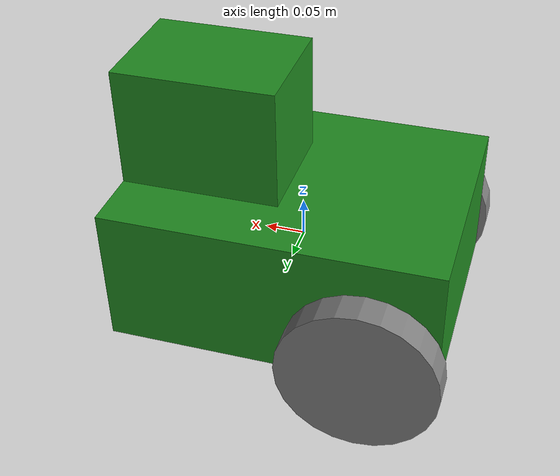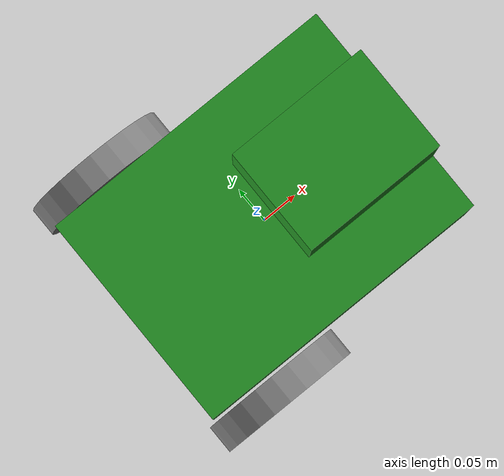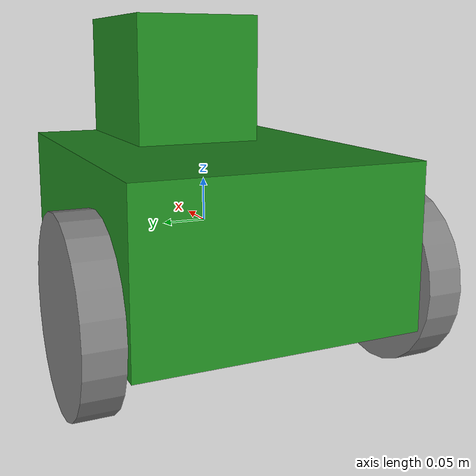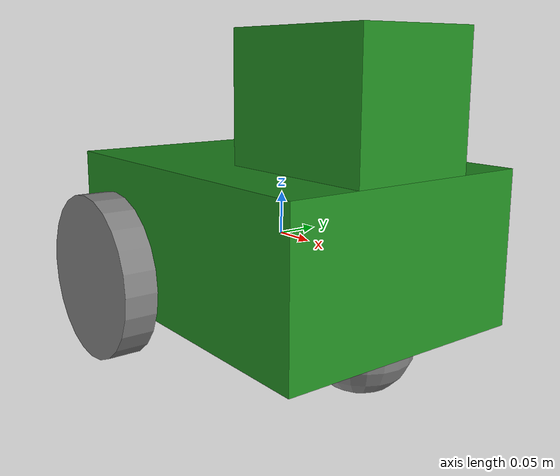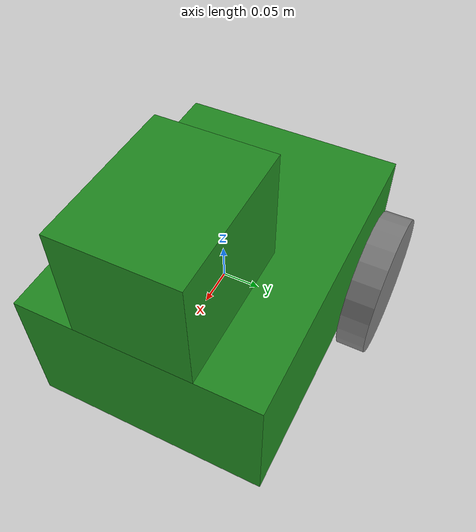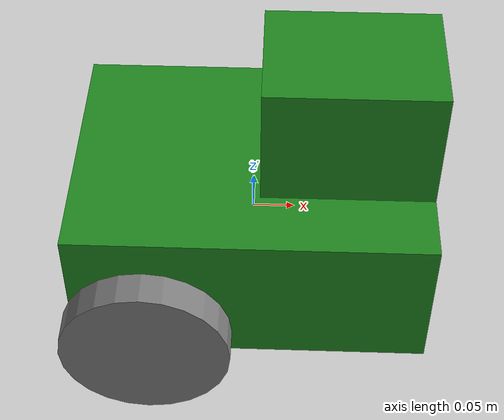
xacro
<?xml version="1.0"?>
<robot name="dino_bot" xmlns:xacro="http://ros.org/wiki/xacro">
  <xacro:include filename="$(find robot_dino)/urdf/robot_dino.gazebo.xacro" />
  <!-- Define robot constants -->
  <xacro:property name="base_width"  value="0.31"/>
  <xacro:property name="base_length" value="0.42"/>
  <xacro:property name="base_height" value="0.18"/>

  <xacro:property name="wheel_radius" value="0.10"/>
  <xacro:property name="wheel_width" value="0.04"/>
  <xacro:property name="wheel_ygap" value="0.025"/>
  <xacro:property name="wheel_zoff" value="0.05"/>
  <xacro:property name="wheel_xoff" value="0.12"/>

  <xacro:property name="caster_xoff" value="0.14"/>
  <xacro:property name="M_PI" value="3.1415926535897931"/>

  <!-- Robot Base -->
  <link name="base_link">
    <visual>
      <geometry>
        <box size="${base_length} ${base_width} ${base_height}"/>
      </geometry>
      <material name="DinoGreen">
        <color rgba="0.13 0.55 0.13 1.0"/>
      </material>
    </visual>
    <collision>
      <geometry>
        <box size="${base_length} ${base_width} ${base_height}"/>
      </geometry>
    </collision>
    <inertial>
      <mass value="1"/>
      <inertia ixx="0.1" ixy="0.0" ixz="0.0" iyy="0.1" iyz="0.0" izz="0.1"/>
    </inertial>
  </link>

  <!-- Robot Footprint -->
  <link name="base_footprint"/>

  <joint name="base_joint" type="fixed">
    <parent link="base_link"/>
    <child link="base_footprint"/>
    <origin xyz="0.0 0.0 ${-(wheel_radius+wheel_zoff)}" rpy="0 0 0"/>
  </joint>

  <!-- Head -->
  <xacro:property name="head_len" value="0.20"/>
  <xacro:property name="head_h"   value="0.15"/>

  <link name="head_link">
    <visual>
      <origin xyz="0 0 0" rpy="0 0 0"/>
      <geometry>
        <box size="${head_len} 0.15 ${head_h}"/>
      </geometry>
      <material name="DinoGreen">
        <color rgba="0.13 0.55 0.13 1.0"/>
      </material>
    </visual>
    <collision>
      <origin xyz="0 0 0" rpy="0 0 0"/>
      <geometry>
        <box size="${head_len} 0.15 ${head_h}"/>
      </geometry>
    </collision>
    <inertial>
      <mass value="0.1"/>
      <inertia ixx="0.01" ixy="0" ixz="0" iyy="0.01" iyz="0" izz="0.01"/>
    </inertial>
  </link>

  <joint name="neck_joint" type="fixed">
    <parent link="base_link"/>
    <child link="head_link"/>
    <origin xyz="${base_length/2 - head_len/2} 0 ${base_height/2 + head_h/2}" rpy="0 0 0"/>
  </joint>

  <gazebo reference="head_link">
        <sensor name="gpu_lidar" type="gpu_lidar">
            <always_on>true</always_on>
            <visualize>true</visualize>
            <update_rate>10</update_rate>
            <topic>/scan</topic>
            <frame_id>head_link</frame_id>
            <ray>
                <scan>
                    <horizontal>
                        <samples>360</samples>
                        <resolution>1</resolution>
                        <min_angle>-${M_PI}</min_angle>
                        <max_angle>${M_PI}</max_angle>
                    </horizontal>
                </scan>
                <range>
                    <min>0.08</min>
                    <max>10.0</max>
                    <resolution>0.01</resolution>
                </range>
                <noise>
                    <type>gaussian</type>
                    <mean>0.0</mean>
                    <stddev>0.01</stddev>
                </noise>
            </ray>
        </sensor>
  </gazebo>

  <gazebo reference="head_link">
        <sensor name="depth_camera" type="depth_camera">
            <pose>0 0 0 0 0 0</pose>
            <always_on>true</always_on>
            <update_rate>10</update_rate>
            <camera>
                <horizontal_fov>1.51843645</horizontal_fov>
                <image>
                    <width>848</width>
                    <height>480</height>
                    <format>R_FLOAT32</format>
                </image>
                <clip>
                    <near>0.1</near>
                    <far>10</far>
                </clip>
                <lens>
                    <intrinsics>
                        <fx>421.61578369140625</fx>
                        <fy>421.61578369140625</fy>
                        <cx>422.2854309082031</cx>
                        <cy>236.57237243652344</cy>
                        <s>0</s>
                    </intrinsics>
                </lens>
                <noise>
                    <type>gaussian</type>
                    <mean>0.0</mean>
                    <stddev>0.007</stddev>
                </noise>
            </camera>
        </sensor>
  </gazebo>

  <gazebo reference="head_link">
        <sensor name="imu_sensor" type="imu">
            <pose>0 0 0 0 0 0</pose>
            <always_on>1</always_on>
            <update_rate>100</update_rate>
            <visualize>true</visualize>
            <topic>imu</topic>

        </sensor>
  </gazebo>

  <!-- Wheels -->
  <xacro:macro name="wheel" params="prefix x_reflect y_reflect">
    <link name="${prefix}_link">
      <visual>
        <origin xyz="0 0 0" rpy="${pi/2} 0 0"/>
        <geometry>
          <cylinder radius="${wheel_radius}" length="${wheel_width}"/>
        </geometry>
        <material name="Gray">
          <color rgba="0.5 0.5 0.5 1.0"/>
        </material>
      </visual>
      <collision>
        <origin xyz="0 0 0" rpy="${pi/2} 0 0"/>
        <geometry>
          <cylinder radius="${wheel_radius}" length="${wheel_width}"/>
        </geometry>
      </collision>
      <inertial>
        <mass value="0.1"/>
        <inertia ixx="0.01" ixy="0.0" ixz="0.0" iyy="0.01" iyz="0.0" izz="0.01"/>
      </inertial>
    </link>

    <joint name="${prefix}_joint" type="continuous">
      <parent link="base_link"/>
      <child link="${prefix}_link"/>
      <origin xyz="${x_reflect*wheel_xoff} ${y_reflect*(base_width/2+wheel_ygap)} ${-wheel_zoff}" rpy="0 0 0"/>
      <axis xyz="0 1 0"/>
    </joint>
  </xacro:macro>

  <xacro:wheel prefix="drivewhl_l" x_reflect="-1" y_reflect="1" />
  <xacro:wheel prefix="drivewhl_r" x_reflect="-1" y_reflect="-1" />

  <!-- front caster -->
  <link name="front_caster">
    <visual>
      <geometry>
        <sphere radius="${(wheel_radius+wheel_zoff-(base_height/2))}"/>
      </geometry>
      <material name="Gray">
        <color rgba="0.5 0.5 0.5 1.0"/>
      </material>
    </visual>
    <collision>
      <geometry>
        <sphere radius="${(wheel_radius+wheel_zoff-(base_height/2))}"/>
      </geometry>
    </collision>
    <inertial>
      <mass value="0.05"/>
      <inertia ixx="0.005" ixy="0.0" ixz="0.0" iyy="0.005" iyz="0.0" izz="0.005"/>
    </inertial>
  </link>

  <joint name="caster_joint" type="fixed">
    <parent link="base_link"/>
    <child link="front_caster"/>
    <origin xyz="${caster_xoff} 0.0 ${-(base_height/2)}" rpy="0 0 0"/>
  </joint>

  <gazebo reference="front_caster">
        <mu1 value="0.001"/>
        <mu2 value="0.001"/>
  </gazebo>

</robot>
